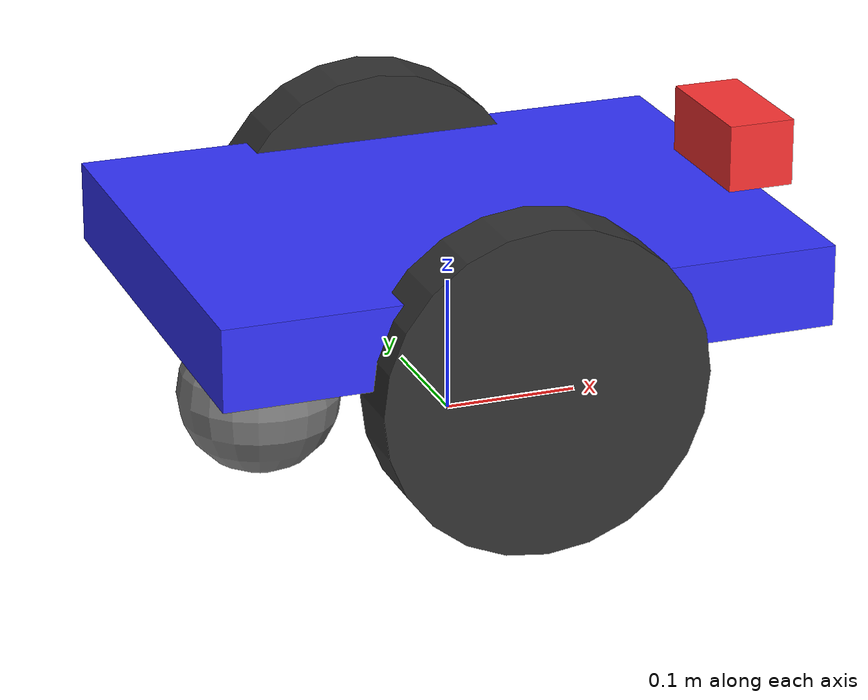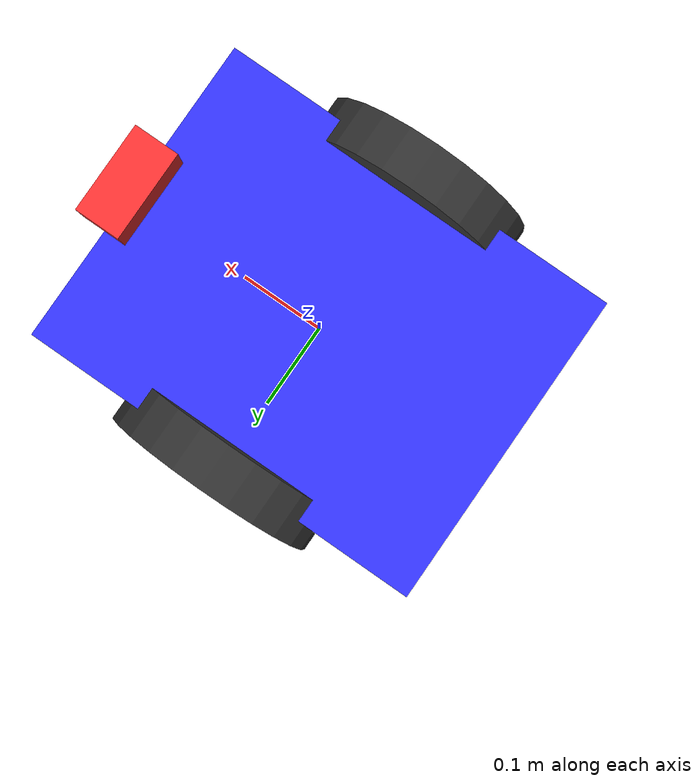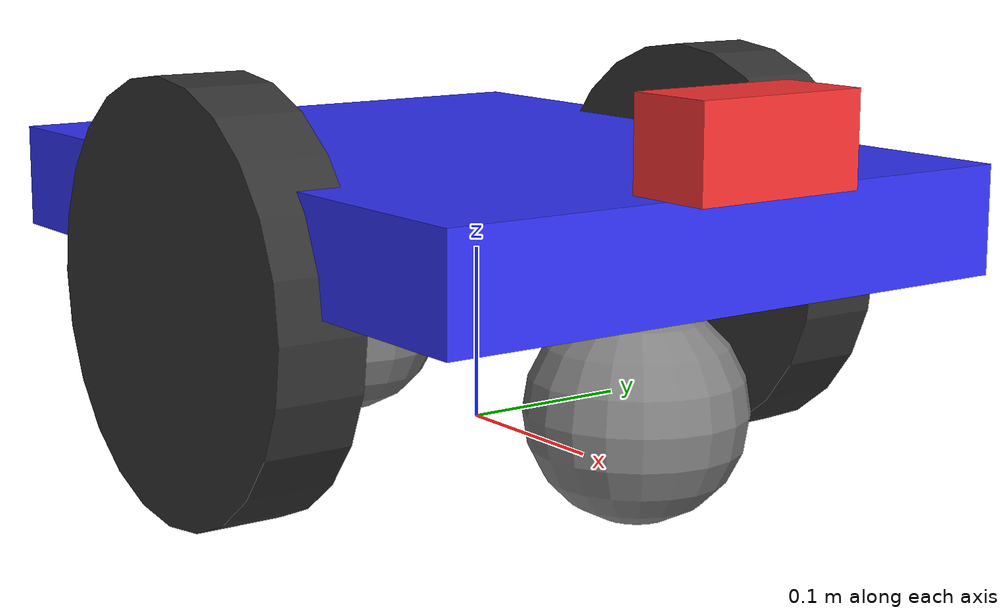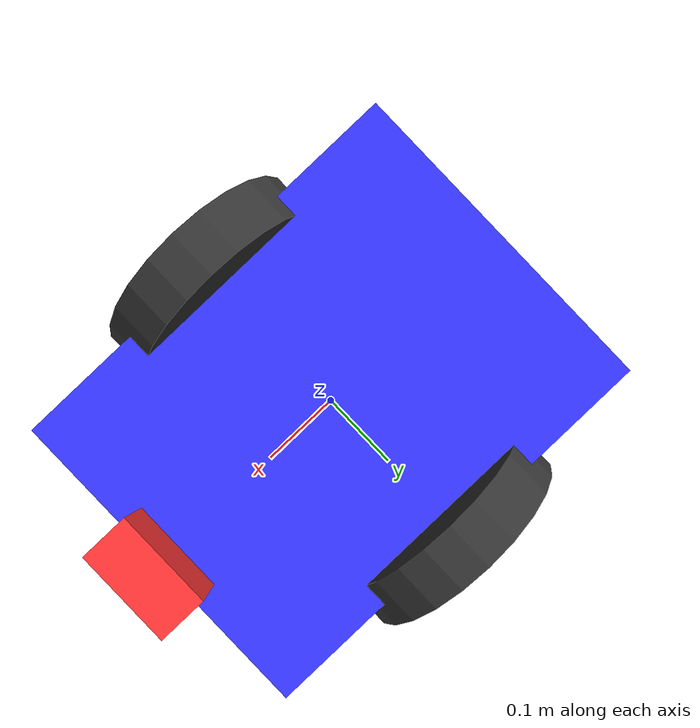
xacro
<?xml version="1.0"?>
<robot xmlns:xacro="http://www.ros.org/wiki/xacro" name="two_wheel_robot">

  <!-- 优化的参数配置 -->
  <xacro:property name="chassis_width" value="0.35"/>    <!-- 增加宽度 -->
  <xacro:property name="chassis_length" value="0.45"/>   <!-- 增加长度 -->
  <xacro:property name="chassis_height" value="0.06"/>   <!-- 降低高度 -->
  <xacro:property name="wheel_radius" value="0.12"/>
  <xacro:property name="wheel_width" value="0.05"/>
  <xacro:property name="wheel_separation" value="0.35"/> <!-- 减小轮距 -->
  <xacro:property name="caster_radius" value="0.06"/>   <!-- 脚轮半径 -->

  <!-- Base Link -->
  <link name="base_link"/>

  <!-- Chassis -->
  <link name="chassis">
    <visual>
      <origin xyz="0 0 0" rpy="0 0 0"/>
      <geometry>
        <box size="${chassis_length} ${chassis_width} ${chassis_height}"/>
      </geometry>
      <material name="blue">
        <color rgba="0.2 0.2 1.0 1.0"/>
      </material>
    </visual>
    <collision>
      <origin xyz="0 0 0" rpy="0 0 0"/>
      <geometry>
        <box size="${chassis_length} ${chassis_width} ${chassis_height}"/>
      </geometry>
    </collision>
    <inertial>
      <mass value="12.0"/>  <!-- 增加质量 -->
      <!-- 降低重心的惯性配置 -->
      <origin xyz="0 0 -0.02" rpy="0 0 0"/>
      <inertia ixx="0.15" ixy="0.0" ixz="0.0" iyy="0.25" iyz="0.0" izz="0.30"/>
    </inertial>
  </link>

  <joint name="base_to_chassis" type="fixed">
    <parent link="base_link"/>
    <child link="chassis"/>
    <!-- 调整底盘高度，使重心更低 -->
    <origin xyz="0 0 ${wheel_radius + 0.01}"/>
  </joint>

  <!-- Left Wheel -->
  <link name="left_wheel">
    <visual>
      <origin xyz="0 0 0" rpy="1.5708 0 0"/>
      <geometry>
        <cylinder radius="${wheel_radius}" length="${wheel_width}"/>
      </geometry>
      <material name="black">
        <color rgba="0.2 0.2 0.2 1.0"/>
      </material>
    </visual>
    <collision>
      <origin xyz="0 0 0" rpy="1.5708 0 0"/>
      <geometry>
        <cylinder radius="${wheel_radius}" length="${wheel_width}"/>
      </geometry>
    </collision>
    <inertial>
      <mass value="1.5"/>  <!-- 增加轮子质量 -->
      <inertia ixx="0.008" ixy="0.0" ixz="0.0" iyy="0.008" iyz="0.0" izz="0.015"/>
    </inertial>
  </link>

  <joint name="left_wheel_joint" type="continuous">
    <parent link="chassis"/>
    <child link="left_wheel"/>
    <origin xyz="0 ${wheel_separation/2} ${-chassis_height/2 - 0.01}" rpy="0 0 0"/>
    <axis xyz="0 1 0"/>
  </joint>

  <!-- Right Wheel -->
  <link name="right_wheel">
    <visual>
      <origin xyz="0 0 0" rpy="1.5708 0 0"/>
      <geometry>
        <cylinder radius="${wheel_radius}" length="${wheel_width}"/>
      </geometry>
      <material name="black">
        <color rgba="0.2 0.2 0.2 1.0"/>
      </material>
    </visual>
    <collision>
      <origin xyz="0 0 0" rpy="1.5708 0 0"/>
      <geometry>
        <cylinder radius="${wheel_radius}" length="${wheel_width}"/>
      </geometry>
    </collision>
    <inertial>
      <mass value="1.5"/>  <!-- 增加轮子质量 -->
      <inertia ixx="0.008" ixy="0.0" ixz="0.0" iyy="0.008" iyz="0.0" izz="0.015"/>
    </inertial>
  </link>

  <joint name="right_wheel_joint" type="continuous">
    <parent link="chassis"/>
    <child link="right_wheel"/>
    <origin xyz="0 ${-wheel_separation/2} ${-chassis_height/2 - 0.01}" rpy="0 0 0"/>
    <axis xyz="0 1 0"/>
  </joint>

  <!-- 前脚轮 -->
  <link name="front_caster">
    <visual>
      <origin xyz="0 0 0" rpy="0 0 0"/>
      <geometry>
        <sphere radius="${caster_radius}"/>
      </geometry>
      <material name="grey">
        <color rgba="0.5 0.5 0.5 1.0"/>
      </material>
    </visual>
    <collision>
      <origin xyz="0 0 0" rpy="0 0 0"/>
      <geometry>
        <sphere radius="${caster_radius}"/>
      </geometry>
      <!-- 降低摩擦力，让脚轮可以自由滑动 -->
      <surface>
        <friction>
          <ode>
            <mu>0.1</mu>
            <mu2>0.1</mu2>
          </ode>
        </friction>
      </surface>
    </collision>
    <inertial>
      <mass value="0.8"/>
      <inertia ixx="0.0001" ixy="0.0" ixz="0.0" iyy="0.0001" iyz="0.0" izz="0.0001"/>
    </inertial>
  </link>

  <joint name="front_caster_joint" type="fixed">
    <parent link="chassis"/>
    <child link="front_caster"/>
    <origin xyz="${chassis_length/2 - 0.08} 0 ${-chassis_height/2 - caster_radius - 0.005}" rpy="0 0 0"/>
  </joint>

  <!-- 后脚轮 -->
  <link name="rear_caster">
    <visual>
      <origin xyz="0 0 0" rpy="0 0 0"/>
      <geometry>
        <sphere radius="${caster_radius}"/>
      </geometry>
      <material name="grey">
        <color rgba="0.5 0.5 0.5 1.0"/>
      </material>
    </visual>
    <collision>
      <origin xyz="0 0 0" rpy="0 0 0"/>
      <geometry>
        <sphere radius="${caster_radius}"/>
      </geometry>
      <!-- 降低摩擦力，让脚轮可以自由滑动 -->
      <surface>
        <friction>
          <ode>
            <mu>0.1</mu>
            <mu2>0.1</mu2>
          </ode>
        </friction>
      </surface>
    </collision>
    <inertial>
      <mass value="0.8"/>
      <inertia ixx="0.0001" ixy="0.0" ixz="0.0" iyy="0.0001" iyz="0.0" izz="0.0001"/>
    </inertial>
  </link>

  <joint name="rear_caster_joint" type="fixed">
    <parent link="chassis"/>
    <child link="rear_caster"/>
    <origin xyz="${-chassis_length/2 + 0.08} 0 ${-chassis_height/2 - caster_radius - 0.005}" rpy="0 0 0"/>
  </joint>

  <!-- Camera -->
  <link name="camera_link">
    <visual>
      <origin xyz="0 0 0" rpy="0 0 0"/>
      <geometry>
        <box size="0.05 0.1 0.05"/>
      </geometry>
      <material name="red">
        <color rgba="1.0 0.2 0.2 1.0"/>
      </material>
    </visual>
    <collision>
      <origin xyz="0 0 0" rpy="0 0 0"/>
      <geometry>
        <box size="0.05 0.1 0.05"/>
      </geometry>
    </collision>
    <inertial>
      <mass value="0.1"/>
      <inertia ixx="0.001" ixy="0.0" ixz="0.0" iyy="0.001" iyz="0.0" izz="0.001"/>
    </inertial>
  </link>

  <joint name="camera_joint" type="fixed">
    <parent link="chassis"/>
    <child link="camera_link"/>
    <!-- 降低相机高度，降低重心 -->
    <origin xyz="${chassis_length/2} 0 ${chassis_height/2 + 0.025}" rpy="0 0 0"/>
  </joint>

  <!-- 优化的差分驱动控制器 -->
  <gazebo>
    <plugin name="differential_drive_controller" filename="libgazebo_ros_diff_drive.so">
      <ros>
        <namespace>/</namespace>
      </ros>
      <update_rate>50</update_rate>  <!-- 提高更新频率 -->
      <left_joint>left_wheel_joint</left_joint>
      <right_joint>right_wheel_joint</right_joint>
      <wheel_separation>${wheel_separation}</wheel_separation>
      <wheel_diameter>${2*wheel_radius}</wheel_diameter>
      <max_wheel_torque>35</max_wheel_torque>      <!-- 增加扭矩 -->
      <max_wheel_acceleration>0.8</max_wheel_acceleration>  <!-- 降低加速度 -->
      <command_topic>cmd_vel</command_topic>
      <publish_odom>true</publish_odom>
      <publish_odom_tf>true</publish_odom_tf>
      <publish_wheel_tf>true</publish_wheel_tf>
      <odometry_topic>odom</odometry_topic>
      <odometry_frame>odom</odometry_frame>
      <robot_base_frame>base_link</robot_base_frame>
      <!-- 添加噪声模型，更真实的仿真 -->
      <wheel_torque>35</wheel_torque>
      <wheel_acceleration>0.8</wheel_acceleration>
    </plugin>
  </gazebo>

  <!-- Camera Plugin -->
  <gazebo reference="camera_link">
    <sensor type="camera" name="camera">
      <update_rate>30.0</update_rate>
      <camera name="head">
        <horizontal_fov>1.3962634</horizontal_fov>
        <image>
          <width>640</width>
          <height>480</height>
          <format>R8G8B8</format>
        </image>
        <clip>
          <near>0.02</near>
          <far>300</far>
        </clip>
      </camera>
      <plugin name="camera_controller" filename="libgazebo_ros_camera.so">
        <ros>
          <namespace>/</namespace>
          <remapping>image_raw:=robot_camera/image_raw</remapping>
          <remapping>camera_info:=robot_camera/camera_info</remapping>
        </ros>
        <camera_name>robot_camera</camera_name>
        <frame_name>camera_link</frame_name>
        <hack_baseline>0.07</hack_baseline>
      </plugin>
    </sensor>
  </gazebo>

  <!-- Gazebo材质 -->
  <gazebo reference="chassis">
    <material>Gazebo/Blue</material>
  </gazebo>

  <gazebo reference="left_wheel">
    <material>Gazebo/DarkGrey</material>
    <!-- 增加轮子摩擦力 -->
    <mu1>1.0</mu1>
    <mu2>1.0</mu2>
  </gazebo>

  <gazebo reference="right_wheel">
    <material>Gazebo/DarkGrey</material>
    <!-- 增加轮子摩擦力 -->
    <mu1>1.0</mu1>
    <mu2>1.0</mu2>
  </gazebo>

  <gazebo reference="front_caster">
    <material>Gazebo/White</material>
    <!-- 脚轮低摩擦 -->
    <mu1>0.05</mu1>
    <mu2>0.05</mu2>
    <kp>1000000.0</kp>
    <kd>100.0</kd>
    <minDepth>0.001</minDepth>
    <maxVel>1.0</maxVel>
  </gazebo>

  <gazebo reference="rear_caster">
    <material>Gazebo/White</material>
    <!-- 脚轮低摩擦 -->
    <mu1>0.05</mu1>
    <mu2>0.05</mu2>
    <kp>1000000.0</kp>
    <kd>100.0</kd>
    <minDepth>0.001</minDepth>
    <maxVel>1.0</maxVel>
  </gazebo>

  <gazebo reference="camera_link">
    <material>Gazebo/Red</material>
  </gazebo>

</robot>
